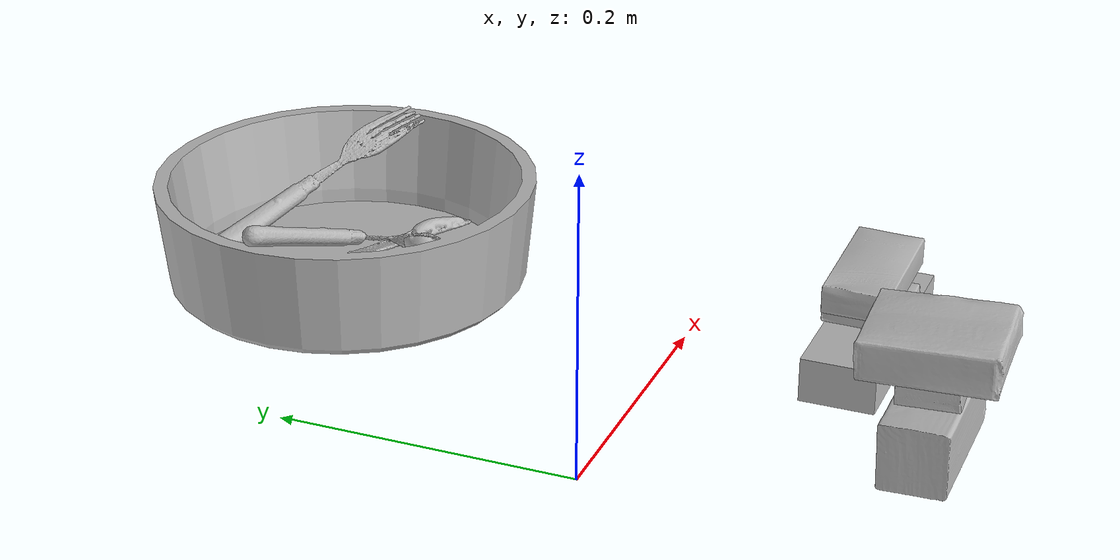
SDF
<?xml version="1.0" ?>
<sdf version="1.4">
  <world name="default">
    <light name="light1" type="point">
      <pose>0 0 1 0 0 0</pose>
      <diffuse>3 3 3 1</diffuse>
      <specular>3 3 3 1</specular>
    </light>
    <light name="light2" type="point">
      <pose>0 0.5 2 0 0 0</pose>
      <diffuse>1 1 1 1</diffuse>
      <specular>1 1 1 1</specular>
    </light>
    <light name="light3" type="point">
      <pose>0 0.5 2 0 0 0</pose>
      <diffuse>3 3 3 1</diffuse>
      <specular>3 3 3 1</specular>
    </light>
    <scene>
      <ambient>0.7 0.7 0.7</ambient>
    </scene>
    <model name="box11">
      <link name="link_box11">
        <collision name="default">
          <geometry>
            <mesh>
              <uri>model://jenga/collision_meshes/collision.obj</uri>
              <scale>1.0 1.0 1.0</scale>
            </mesh>
          </geometry>
          <surface>
            <friction>
              <ode>
                <mu>0.5</mu>
                <mu2>0.5</mu2>
              </ode>
            </friction>
          </surface>
        </collision>
        <visual name="default">
          <geometry>
            <mesh>
              <uri>model://jenga/visual_meshes/visual.dae</uri>
              <scale>1.0 1.0 1.0</scale>
            </mesh>
          </geometry>
        </visual>
        <inertial>
          <mass>0.3186844289302826</mass>
          <pose>-2.502855807051674e-07 -0.0001025000965455547 -4.0923401684267446e-05 0.0 -7.34215461761844e-07 0.0</pose>
          <inertia>
            <ixx>8.818771e-05</ixx>
            <iyy>0.0005975576</iyy>
            <izz>0.00063794345</izz>
            <ixy>0</ixy>
            <ixz>0</ixz>
            <iyz>0</iyz>
          </inertia>
        </inertial>
      </link>
      <pose>0.22000040113925934 -0.11989820003509521 0.015000256709754467 6.710262339042517e-06 8.855485501690309e-07 -3.148641765848598e-06</pose>
    </model>
    <model name="box12">
      <link name="link_box12">
        <collision name="default">
          <geometry>
            <mesh>
              <uri>model://pudding_box/collision_meshes/collision.obj</uri>
              <scale>0.5 0.5 0.5</scale>
            </mesh>
          </geometry>
          <surface>
            <friction>
              <ode>
                <mu>0.5</mu>
                <mu2>0.5</mu2>
              </ode>
            </friction>
          </surface>
        </collision>
        <visual name="default">
          <geometry>
            <mesh>
              <uri>model://pudding_box/visual_meshes/visual.dae</uri>
              <scale>0.5 0.5 0.5</scale>
            </mesh>
          </geometry>
        </visual>
        <inertial>
          <mass>0.030172348022460938</mass>
          <pose>0.00024474109522998333 0.000403394311433658 -0.00025944141088984907 0.005213102256408686 -0.006603800110353006 0.02007982142872578</pose>
          <inertia>
            <ixx>8.527073e-06</ixx>
            <iyy>5.7370744e-06</iyy>
            <izz>1.259245e-05</izz>
            <ixy>0</ixy>
            <ixz>0</ixz>
            <iyz>0</iyz>
          </inertia>
        </inertial>
      </link>
      <pose>0.2197759449481964 -0.12027543783187866 0.039862047880887985 0.023340187310588945 -0.010751219682539167 0.026673028177521034</pose>
    </model>
    <model name="box13">
      <link name="link_box13">
        <collision name="default">
          <geometry>
            <mesh>
              <uri>model://sugar_box/collision_meshes/collision.obj</uri>
              <scale>0.5 0.5 0.5</scale>
            </mesh>
          </geometry>
          <surface>
            <friction>
              <ode>
                <mu>0.5</mu>
                <mu2>0.5</mu2>
              </ode>
            </friction>
          </surface>
        </collision>
        <visual name="default">
          <geometry>
            <mesh>
              <uri>model://sugar_box/visual_meshes/visual.dae</uri>
              <scale>0.5 0.5 0.5</scale>
            </mesh>
          </geometry>
        </visual>
        <inertial>
          <mass>0.12330043315887451</mass>
          <pose>0.0005171863595023751 1.924554817378521e-05 -0.0001818240125430748 -0.0004046263878582698 0.0010506634058618082 0.0026153787888998363</pose>
          <inertia>
            <ixx>2.5683388e-05</ixx>
            <iyy>8.301401e-05</iyy>
            <izz>9.937768e-05</izz>
            <ixy>0</ixy>
            <ixz>0</ixz>
            <iyz>0</iyz>
          </inertia>
        </inertial>
      </link>
      <pose>0.21906815469264984 -0.12069462984800339 0.060520365834236145 0.014587800804868762 -0.049900269701846134 -0.007130238856838067</pose>
    </model>
    <model name="box21">
      <link name="link_box21">
        <collision name="default">
          <geometry>
            <mesh>
              <uri>model://wood_block/collision_meshes/collision.obj</uri>
              <scale>0.5 0.5 0.5</scale>
            </mesh>
          </geometry>
          <surface>
            <friction>
              <ode>
                <mu>0.5</mu>
                <mu2>0.5</mu2>
              </ode>
            </friction>
          </surface>
        </collision>
        <visual name="default">
          <geometry>
            <mesh>
              <uri>model://wood_block/visual_meshes/visual.dae</uri>
              <scale>0.5 0.5 0.5</scale>
            </mesh>
          </geometry>
        </visual>
        <inertial>
          <mass>0.22575385868549347</mass>
          <pose>-2.9066577553749084e-06 -0.00028540470520965755 0.00013204291462898254 -0.05220771918194674 -0.005192696213783058 -0.006861377697513623</pose>
          <inertia>
            <ixx>7.552322e-05</ixx>
            <iyy>0.00023857782</iyy>
            <izz>0.00023768542</izz>
            <ixy>0</ixy>
            <ixz>0</ixz>
            <iyz>0</iyz>
          </inertia>
        </inertial>
      </link>
      <pose>0.10981223732233047 -0.18919581174850464 0.02252638153731823 -0.018196062112851238 -0.0013018066902083778 0.0058288074332980685</pose>
    </model>
    <model name="box22">
      <link name="link_box22">
        <collision name="default">
          <geometry>
            <mesh>
              <uri>model://cracker_box/collision_meshes/collision.obj</uri>
              <scale>0.25 0.25 0.25</scale>
            </mesh>
          </geometry>
          <surface>
            <friction>
              <ode>
                <mu>0.5</mu>
                <mu2>0.5</mu2>
              </ode>
            </friction>
          </surface>
        </collision>
        <visual name="default">
          <geometry>
            <mesh>
              <uri>model://cracker_box/visual_meshes/visual.dae</uri>
              <scale>0.25 0.25 0.25</scale>
            </mesh>
          </geometry>
        </visual>
        <inertial>
          <mass>0.02141544781625271</mass>
          <pose>0.0002366038243053481 6.358561950037256e-05 -0.00042573839891701937 -0.000316207804917531 -0.011106489600095467 0.0025467954686493135</pose>
          <inertia>
            <ixx>3.4044588e-06</ixx>
            <iyy>5.62143e-06</iyy>
            <izz>8.022297e-06</izz>
            <ixy>0</ixy>
            <ixz>0</ixz>
            <iyz>0</iyz>
          </inertia>
        </inertial>
      </link>
      <pose>0.10973246395587921 -0.18936489522457123 0.05442220717668533 -0.03186076582145903 -0.013491796684449367 0.04855994533144778</pose>
    </model>
    <model name="box23">
      <link name="link_box23">
        <collision name="default">
          <geometry>
            <mesh>
              <uri>model://gelatin_box/collision_meshes/collision.obj</uri>
              <scale>1.0 1.0 1.0</scale>
            </mesh>
          </geometry>
          <surface>
            <friction>
              <ode>
                <mu>0.5</mu>
                <mu2>0.5</mu2>
              </ode>
            </friction>
          </surface>
        </collision>
        <visual name="default">
          <geometry>
            <mesh>
              <uri>model://gelatin_box/visual_meshes/visual.dae</uri>
              <scale>1.0 1.0 1.0</scale>
            </mesh>
          </geometry>
        </visual>
        <inertial>
          <mass>0.2518538236618042</mass>
          <pose>0.00043196187471039593 0.00011156871914863586 -0.0003640321083366871 -0.001050372077086074 -0.00475581729336075 0.01644055760821351</pose>
          <inertia>
            <ixx>0.00017778824</ixx>
            <iyy>0.00012699323</iyy>
            <izz>0.00027063338</izz>
            <ixy>0</ixy>
            <ixz>0</ixz>
            <iyz>0</iyz>
          </inertia>
        </inertial>
      </link>
      <pose>0.10910383611917496 -0.18900465965270996 0.07824572175741196 -0.02436255484478847 -0.02705055298493508 0.04024432908698326</pose>
    </model>
    <model name="plate1">
      <link name="link_plate1">
        <collision name="default">
          <geometry>
            <mesh>
              <uri>model://pan_tefal/collision_meshes/collision.obj</uri>
              <scale>1.0 1.0 1.0</scale>
            </mesh>
          </geometry>
          <surface>
            <friction>
              <ode>
                <mu>0.5</mu>
                <mu2>0.5</mu2>
              </ode>
            </friction>
          </surface>
        </collision>
        <visual name="default">
          <geometry>
            <mesh>
              <uri>model://pan_tefal/visual_meshes/visual.dae</uri>
              <scale>1.0 1.0 1.0</scale>
            </mesh>
          </geometry>
        </visual>
        <inertial>
          <mass>1.2783581018447876</mass>
          <pose>-0.0001800234749680385 3.279297015978955e-05 -0.008514934219419956 0.0008190282028794127 -0.0003301398069692291 -0.33185125702417473</pose>
          <inertia>
            <ixx>0.0088244425</ixx>
            <iyy>0.008881334</iyy>
            <izz>0.016244099</izz>
            <ixy>0</ixy>
            <ixz>0</ixz>
            <iyz>0</iyz>
          </inertia>
        </inertial>
      </link>
      <pose>0.19999118149280548 0.2500121295452118 0.03799353539943695 -0.00033356210678109577 -0.0003172272155953153 5.244807670729065e-06</pose>
    </model>
    <model name="silverware1">
      <link name="link_silverware1">
        <collision name="default">
          <geometry>
            <mesh>
              <uri>model://knife/collision_meshes/collision.obj</uri>
              <scale>1.0 1.0 1.0</scale>
            </mesh>
          </geometry>
          <surface>
            <friction>
              <ode>
                <mu>0.5</mu>
                <mu2>0.5</mu2>
              </ode>
            </friction>
          </surface>
        </collision>
        <visual name="default">
          <geometry>
            <mesh>
              <uri>model://knife/visual_meshes/visual.dae</uri>
              <scale>1.0 1.0 1.0</scale>
            </mesh>
          </geometry>
        </visual>
        <inertial>
          <mass>0.028752580285072327</mass>
          <pose>-0.023785240948200226 0.0015275123296305537 5.0620223191799596e-05 0.07306965696526056 0.017248417457013686 -0.00740982691157592</pose>
          <inertia>
            <ixx>8.161146e-07</ixx>
            <iyy>0.000110462766</iyy>
            <izz>0.00011072555</izz>
            <ixy>0</ixy>
            <ixz>0</ixz>
            <iyz>0</iyz>
          </inertia>
        </inertial>
      </link>
      <pose>0.20095179975032806 0.251152366399765 0.013105027377605438 2.8782064043736626 0.027397763274392882 -0.4819995611258913</pose>
    </model>
    <model name="silverware2">
      <link name="link_silverware2">
        <collision name="default">
          <geometry>
            <mesh>
              <uri>model://spoon/collision_meshes/collision.obj</uri>
              <scale>1.0 1.0 1.0</scale>
            </mesh>
          </geometry>
          <surface>
            <friction>
              <ode>
                <mu>0.5</mu>
                <mu2>0.5</mu2>
              </ode>
            </friction>
          </surface>
        </collision>
        <visual name="default">
          <geometry>
            <mesh>
              <uri>model://spoon/visual_meshes/visual.dae</uri>
              <scale>1.0 1.0 1.0</scale>
            </mesh>
          </geometry>
        </visual>
        <inertial>
          <mass>0.03275385871529579</mass>
          <pose>-0.005526320543140173 -0.0016034176805987954 -0.0007271653157658875 0.03521620701241808 -0.03906583474323888 0.006150609342160928</pose>
          <inertia>
            <ixx>1.8218228e-06</ixx>
            <iyy>0.00012462735</iyy>
            <izz>0.0001255258</izz>
            <ixy>0</ixy>
            <ixz>0</ixz>
            <iyz>0</iyz>
          </inertia>
        </inertial>
      </link>
      <pose>0.14940819144248962 0.2152222990989685 0.05471460148692131 2.7233762250252447 0.3335157220009413 -0.4064429151484012</pose>
    </model>
    <model name="silverware3">
      <link name="link_silverware3">
        <collision name="default">
          <geometry>
            <mesh>
              <uri>model://fork/collision_meshes/collision.obj</uri>
              <scale>1.0 1.0 1.0</scale>
            </mesh>
          </geometry>
          <surface>
            <friction>
              <ode>
                <mu>0.5</mu>
                <mu2>0.5</mu2>
              </ode>
            </friction>
          </surface>
        </collision>
        <visual name="default">
          <geometry>
            <mesh>
              <uri>model://fork/visual_meshes/visual.dae</uri>
              <scale>1.0 1.0 1.0</scale>
            </mesh>
          </geometry>
        </visual>
        <inertial>
          <mass>0.015051598660647869</mass>
          <pose>-0.029570037499070168 0.00046588244731538 0.0003218861238565296 -0.013550825752082697 -0.010977832944741694 0.014453903400543814</pose>
          <inertia>
            <ixx>5.2764364e-07</ixx>
            <iyy>3.9295395e-05</iyy>
            <izz>3.953141e-05</izz>
            <ixy>0</ixy>
            <ixz>0</ixz>
            <iyz>0</iyz>
          </inertia>
        </inertial>
      </link>
      <pose>0.2405184805393219 0.2979772686958313 0.04721735045313835 -2.849559206370719 -0.36916243421098477 -0.5293660149768472</pose>
    </model>
  </world>
</sdf>
